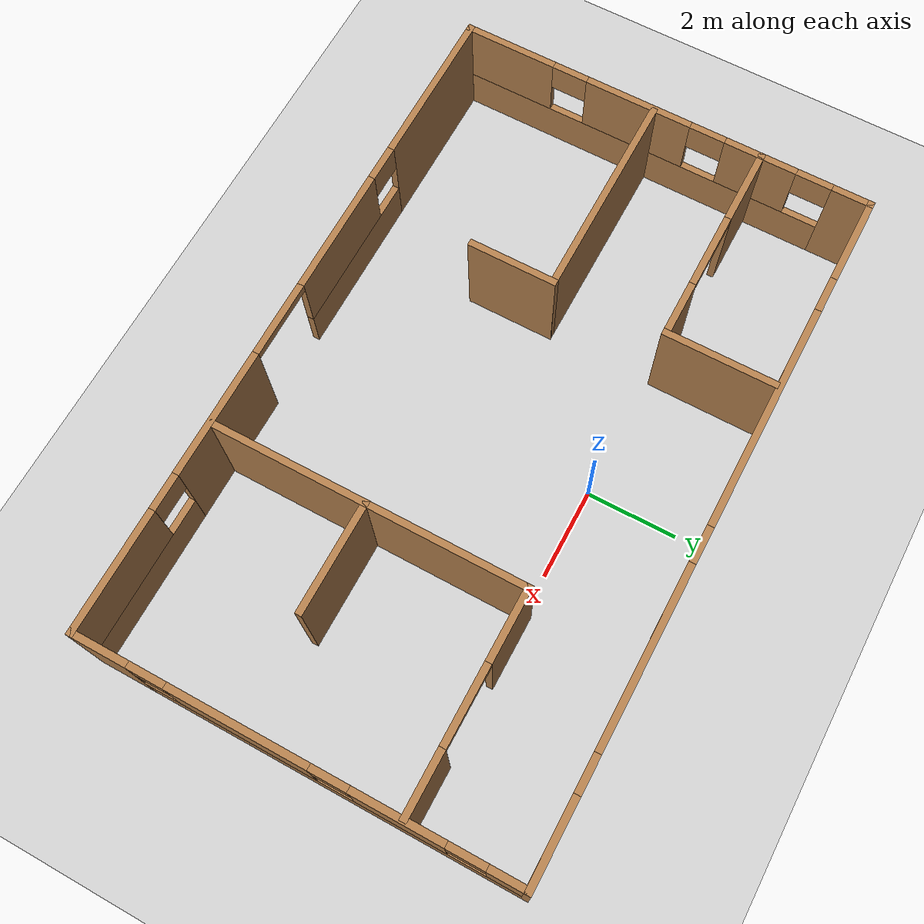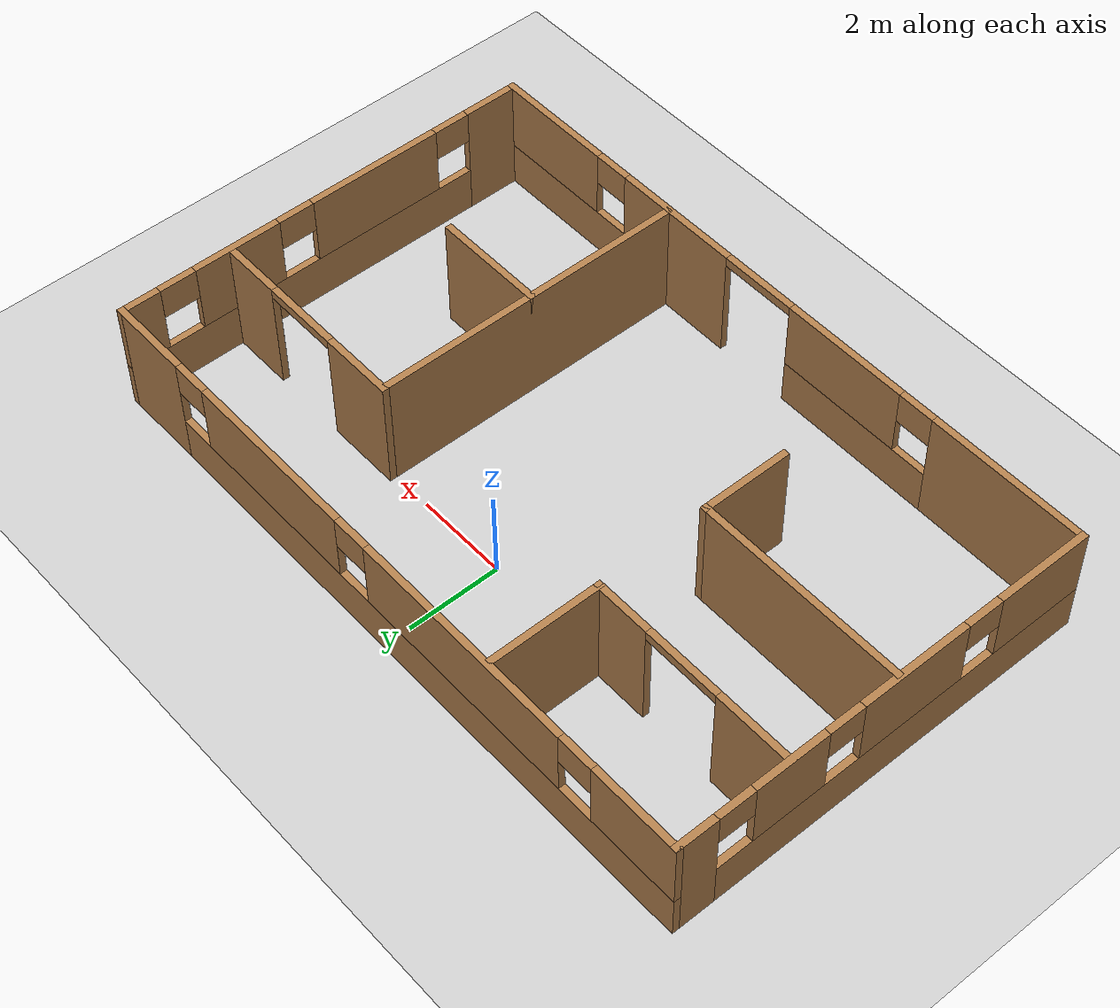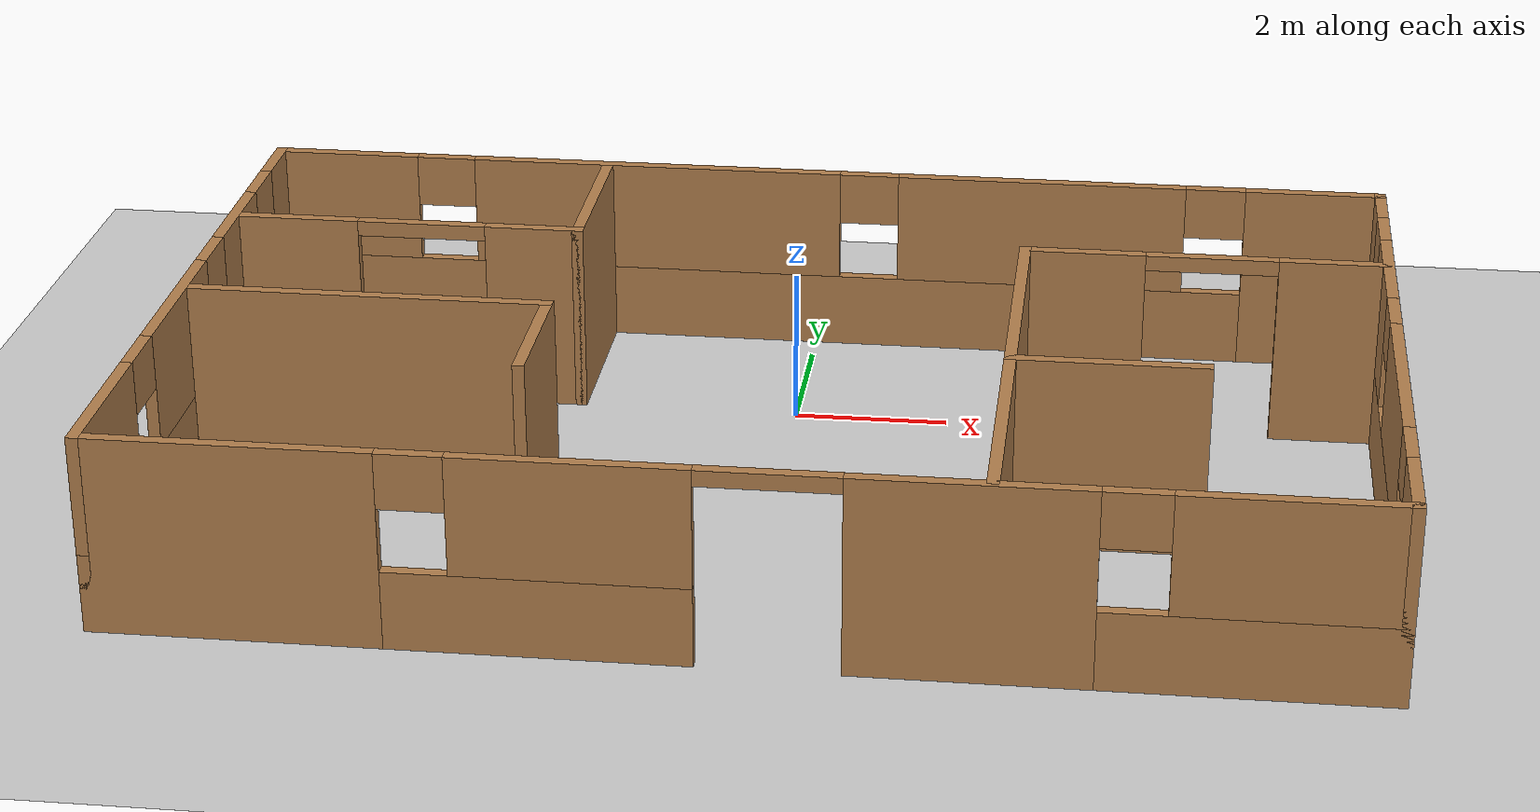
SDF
<sdf version="1.7">
 <world name="default">
  <light name="sun" type="directional">
   <pose>0 0 10 0 -0 0</pose>
   <diffuse>0.8 0.8 0.8 1</diffuse>
   <specular>0.2 0.2 0.2 1</specular>
   <attenuation>
    <range>1000</range>
    <constant>0.9</constant>
    <linear>0.01</linear>
    <quadratic>0.001</quadratic>
   </attenuation>
   <direction>-0.5 0.1 -0.9</direction>
   <spot><inner_angle>0</inner_angle><outer_angle>0</outer_angle><falloff>0</falloff></spot>
  </light>
  <model name="ground_plane">
   <static>1</static>
   <link name="link">
    <collision name="collision">
     <geometry><plane><normal>0 0 1</normal><size>100 100</size></plane></geometry>
     <surface>
      <contact><collide_bitmask>65535</collide_bitmask></contact>
      <friction><ode><mu>100</mu><mu2>50</mu2></ode></friction>
     </surface>
    </collision>
    <visual name="visual">
     <cast_shadows>0</cast_shadows>
     <geometry><plane><normal>0 0 1</normal><size>100 100</size></plane></geometry>
     <material>
      <script><uri>file://media/materials/scripts/gazebo.material</uri><name>Gazebo/Grey</name></script>
     </material>
    </visual>
   </link>
  </model>
  <gravity>0 0 -9.8</gravity>
  <magnetic_field>6e-06 2.3e-05 -4.2e-05</magnetic_field>
  <atmosphere type="adiabatic"/>
  <physics type="ode">
   <max_step_size>0.001</max_step_size>
   <real_time_factor>1</real_time_factor>
   <real_time_update_rate>1000</real_time_update_rate>
  </physics>
  <scene><ambient>0.4 0.4 0.4 1</ambient><background>0.7 0.7 0.7 1</background><shadows>1</shadows></scene>
  <spherical_coordinates>
   <surface_model>EARTH_WGS84</surface_model>
   <latitude_deg>0</latitude_deg>
   <longitude_deg>0</longitude_deg>
   <elevation>0</elevation>
   <heading_deg>0</heading_deg>
  </spherical_coordinates>
  <model name="housev2">
   <pose>0.047374 -2.12789 0 0 -0 0</pose>
   <link name="Wall_0">
    <pose>-7.55 -0.0175 0 0 -0 -1.5708</pose>
    <visual name="Wall_0_Visual_0">
     <pose>-4.29025 0 1.25 0 -0 0</pose>
     <geometry><box><size>0.9195 0.15 2.5</size></box></geometry>
     <material>
      <script><uri>file://media/materials/scripts/gazebo.material</uri><name>Gazebo/Wood</name></script>
      <ambient>1 1 1 1</ambient>
     </material>
     <meta><layer>0</layer></meta>
    </visual>
    <collision name="Wall_0_Collision_0">
     <geometry><box><size>0.9195 0.15 2.5</size></box></geometry>
     <pose>-4.29025 0 1.25 0 -0 0</pose>
    </collision>
    <visual name="Wall_0_Visual_1">
     <pose>0.45975 0 0.5 0 -0 0</pose>
     <geometry><box><size>8.5805 0.15 1</size></box></geometry>
     <material>
      <script><uri>file://media/materials/scripts/gazebo.material</uri><name>Gazebo/Wood</name></script>
      <ambient>1 1 1 1</ambient>
     </material>
     <meta><layer>0</layer></meta>
    </visual>
    <collision name="Wall_0_Collision_1">
     <geometry><box><size>8.5805 0.15 1</size></box></geometry>
     <pose>0.45975 0 0.5 0 -0 0</pose>
    </collision>
    <visual name="Wall_0_Visual_2">
     <pose>-2.21725 0 1.75 0 -0 0</pose>
     <geometry><box><size>1.6265 0.15 1.5</size></box></geometry>
     <material>
      <script><uri>file://media/materials/scripts/gazebo.material</uri><name>Gazebo/Wood</name></script>
      <ambient>1 1 1 1</ambient>
     </material>
     <meta><layer>0</layer></meta>
    </visual>
    <collision name="Wall_0_Collision_2">
     <geometry><box><size>1.6265 0.15 1.5</size></box></geometry>
     <pose>-2.21725 0 1.75 0 -0 0</pose>
    </collision>
    <visual name="Wall_0_Visual_3">
     <pose>0.61175 0 1.75 0 -0 0</pose>
     <geometry><box><size>2.4315 0.15 1.5</size></box></geometry>
     <material>
      <script><uri>file://media/materials/scripts/gazebo.material</uri><name>Gazebo/Wood</name></script>
      <ambient>1 1 1 1</ambient>
     </material>
     <meta><layer>0</layer></meta>
    </visual>
    <collision name="Wall_0_Collision_3">
     <geometry><box><size>2.4315 0.15 1.5</size></box></geometry>
     <pose>0.61175 0 1.75 0 -0 0</pose>
    </collision>
    <visual name="Wall_0_Visual_4">
     <pose>3.68875 0 1.75 0 -0 0</pose>
     <geometry><box><size>2.1225 0.15 1.5</size></box></geometry>
     <material>
      <script><uri>file://media/materials/scripts/gazebo.material</uri><name>Gazebo/Wood</name></script>
      <ambient>1 1 1 1</ambient>
     </material>
     <meta><layer>0</layer></meta>
    </visual>
    <collision name="Wall_0_Collision_4">
     <geometry><box><size>2.1225 0.15 1.5</size></box></geometry>
     <pose>3.68875 0 1.75 0 -0 0</pose>
    </collision>
    <visual name="Wall_0_Visual_5">
     <pose>-3.4305 0 2.15 0 -0 0</pose>
     <geometry><box><size>0.8 0.15 0.7</size></box></geometry>
     <material>
      <script><uri>file://media/materials/scripts/gazebo.material</uri><name>Gazebo/Wood</name></script>
      <ambient>1 1 1 1</ambient>
     </material>
     <meta><layer>0</layer></meta>
    </visual>
    <collision name="Wall_0_Collision_5">
     <geometry><box><size>0.8 0.15 0.7</size></box></geometry>
     <pose>-3.4305 0 2.15 0 -0 0</pose>
    </collision>
    <visual name="Wall_0_Visual_6">
     <pose>-1.004 0 2.15 0 -0 0</pose>
     <geometry><box><size>0.8 0.15 0.7</size></box></geometry>
     <material>
      <script><uri>file://media/materials/scripts/gazebo.material</uri><name>Gazebo/Wood</name></script>
      <ambient>1 1 1 1</ambient>
     </material>
     <meta><layer>0</layer></meta>
    </visual>
    <collision name="Wall_0_Collision_6">
     <geometry><box><size>0.8 0.15 0.7</size></box></geometry>
     <pose>-1.004 0 2.15 0 -0 0</pose>
    </collision>
    <visual name="Wall_0_Visual_7">
     <pose>2.2275 0 2.15 0 -0 0</pose>
     <geometry><box><size>0.8 0.15 0.7</size></box></geometry>
     <material>
      <script><uri>file://media/materials/scripts/gazebo.material</uri><name>Gazebo/Wood</name></script>
      <ambient>1 1 1 1</ambient>
     </material>
     <meta><layer>0</layer></meta>
    </visual>
    <collision name="Wall_0_Collision_7">
     <geometry><box><size>0.8 0.15 0.7</size></box></geometry>
     <pose>2.2275 0 2.15 0 -0 0</pose>
    </collision>
   </link>
   <link name="Wall_1">
    <pose>-0 -4.6925 0 0 -0 0</pose>
    <visual name="Wall_1_Visual_0">
     <pose>-5.8455 0 1.25 0 -0 0</pose>
     <geometry><box><size>3.559 0.15 2.5</size></box></geometry>
     <material>
      <script><uri>file://media/materials/scripts/gazebo.material</uri><name>Gazebo/Wood</name></script>
      <ambient>1 1 1 1</ambient>
     </material>
     <meta><layer>0</layer></meta>
    </visual>
    <collision name="Wall_1_Collision_0">
     <geometry><box><size>3.559 0.15 2.5</size></box></geometry>
     <pose>-5.8455 0 1.25 0 -0 0</pose>
    </collision>
    <visual name="Wall_1_Visual_1">
     <pose>2.68275 0 1.25 0 -0 0</pose>
     <geometry><box><size>2.8555 0.15 2.5</size></box></geometry>
     <material>
      <script><uri>file://media/materials/scripts/gazebo.material</uri><name>Gazebo/Wood</name></script>
      <ambient>1 1 1 1</ambient>
     </material>
     <meta><layer>0</layer></meta>
    </visual>
    <collision name="Wall_1_Collision_1">
     <geometry><box><size>2.8555 0.15 2.5</size></box></geometry>
     <pose>2.68275 0 1.25 0 -0 0</pose>
    </collision>
    <visual name="Wall_1_Visual_2">
     <pose>-2.2555 0 0.5 0 -0 0</pose>
     <geometry><box><size>3.621 0.15 1</size></box></geometry>
     <material>
      <script><uri>file://media/materials/scripts/gazebo.material</uri><name>Gazebo/Wood</name></script>
      <ambient>1 1 1 1</ambient>
     </material>
     <meta><layer>0</layer></meta>
    </visual>
    <collision name="Wall_1_Collision_2">
     <geometry><box><size>3.621 0.15 1</size></box></geometry>
     <pose>-2.2555 0 0.5 0 -0 0</pose>
    </collision>
    <visual name="Wall_1_Visual_3">
     <pose>5.86775 0 0.5 0 -0 0</pose>
     <geometry><box><size>3.5145 0.15 1</size></box></geometry>
     <material>
      <script><uri>file://media/materials/scripts/gazebo.material</uri><name>Gazebo/Wood</name></script>
      <ambient>1 1 1 1</ambient>
     </material>
     <meta><layer>0</layer></meta>
    </visual>
    <collision name="Wall_1_Collision_3">
     <geometry><box><size>3.5145 0.15 1</size></box></geometry>
     <pose>5.86775 0 0.5 0 -0 0</pose>
    </collision>
    <visual name="Wall_1_Visual_4">
     <pose>-1.8555 0 1.75 0 -0 0</pose>
     <geometry><box><size>2.821 0.15 1.5</size></box></geometry>
     <material>
      <script><uri>file://media/materials/scripts/gazebo.material</uri><name>Gazebo/Wood</name></script>
      <ambient>1 1 1 1</ambient>
     </material>
     <meta><layer>0</layer></meta>
    </visual>
    <collision name="Wall_1_Collision_4">
     <geometry><box><size>2.821 0.15 1.5</size></box></geometry>
     <pose>-1.8555 0 1.75 0 -0 0</pose>
    </collision>
    <visual name="Wall_1_Visual_5">
     <pose>-1.8555 0 1.75 0 -0 0</pose>
     <geometry><box><size>2.821 0.15 1.5</size></box></geometry>
     <material>
      <script><uri>file://media/materials/scripts/gazebo.material</uri><name>Gazebo/Wood</name></script>
      <ambient>1 1 1 1</ambient>
     </material>
     <meta><layer>0</layer></meta>
    </visual>
    <collision name="Wall_1_Collision_5">
     <geometry><box><size>2.821 0.15 1.5</size></box></geometry>
     <pose>-1.8555 0 1.75 0 -0 0</pose>
    </collision>
    <visual name="Wall_1_Visual_6">
     <pose>6.26775 0 1.75 0 -0 0</pose>
     <geometry><box><size>2.7145 0.15 1.5</size></box></geometry>
     <material>
      <script><uri>file://media/materials/scripts/gazebo.material</uri><name>Gazebo/Wood</name></script>
      <ambient>1 1 1 1</ambient>
     </material>
     <meta><layer>0</layer></meta>
    </visual>
    <collision name="Wall_1_Collision_6">
     <geometry><box><size>2.7145 0.15 1.5</size></box></geometry>
     <pose>6.26775 0 1.75 0 -0 0</pose>
    </collision>
    <visual name="Wall_1_Visual_7">
     <pose>-3.666 0 2.15 0 -0 0</pose>
     <geometry><box><size>0.8 0.15 0.7</size></box></geometry>
     <material>
      <script><uri>file://media/materials/scripts/gazebo.material</uri><name>Gazebo/Wood</name></script>
      <ambient>1 1 1 1</ambient>
     </material>
     <meta><layer>0</layer></meta>
    </visual>
    <collision name="Wall_1_Collision_7">
     <geometry><box><size>0.8 0.15 0.7</size></box></geometry>
     <pose>-3.666 0 2.15 0 -0 0</pose>
    </collision>
    <visual name="Wall_1_Visual_8">
     <pose>4.5105 0 2.15 0 -0 0</pose>
     <geometry><box><size>0.8 0.15 0.7</size></box></geometry>
     <material>
      <script><uri>file://media/materials/scripts/gazebo.material</uri><name>Gazebo/Wood</name></script>
      <ambient>1 1 1 1</ambient>
     </material>
     <meta><layer>0</layer></meta>
    </visual>
    <collision name="Wall_1_Collision_8">
     <geometry><box><size>0.8 0.15 0.7</size></box></geometry>
     <pose>4.5105 0 2.15 0 -0 0</pose>
    </collision>
    <visual name="Wall_1_Visual_9">
     <pose>0.405 0 2.4 0 -0 0</pose>
     <geometry><box><size>1.7 0.15 0.2</size></box></geometry>
     <material>
      <script><uri>file://media/materials/scripts/gazebo.material</uri><name>Gazebo/Wood</name></script>
      <ambient>1 1 1 1</ambient>
     </material>
     <meta><layer>0</layer></meta>
    </visual>
    <collision name="Wall_1_Collision_9">
     <geometry><box><size>1.7 0.15 0.2</size></box></geometry>
     <pose>0.405 0 2.4 0 -0 0</pose>
    </collision>
    <visual name="Wall_1_Visual_10">
     <pose>0.405 0 2.4 0 -0 0</pose>
     <geometry><box><size>1.7 0.15 0.2</size></box></geometry>
     <material>
      <script><uri>file://media/materials/scripts/gazebo.material</uri><name>Gazebo/Wood</name></script>
      <ambient>1 1 1 1</ambient>
     </material>
     <meta><layer>0</layer></meta>
    </visual>
    <collision name="Wall_1_Collision_10">
     <geometry><box><size>1.7 0.15 0.2</size></box></geometry>
     <pose>0.405 0 2.4 0 -0 0</pose>
    </collision>
   </link>
   <link name="Wall_10">
    <collision name="Wall_10_Collision">
     <geometry><box><size>2 0.15 2.5</size></box></geometry>
     <pose>0 0 1.25 0 -0 0</pose>
    </collision>
    <visual name="Wall_10_Visual">
     <pose>0 0 1.25 0 -0 0</pose>
     <geometry><box><size>2 0.15 2.5</size></box></geometry>
     <material>
      <script><uri>file://media/materials/scripts/gazebo.material</uri><name>Gazebo/Wood</name></script>
      <ambient>1 1 1 1</ambient>
     </material>
     <meta><layer>0</layer></meta>
    </visual>
    <pose>-2.8955 -1.192 0 0 -0 -1.5708</pose>
   </link>
   <link name="Wall_13">
    <pose>-5.2415 2.2055 0 0 -0 0</pose>
    <visual name="Wall_13_Visual_0">
     <pose>-1.50325 0 1.25 0 -0 0</pose>
     <geometry><box><size>1.7435 0.15 2.5</size></box></geometry>
     <material>
      <script><uri>file://media/materials/scripts/gazebo.material</uri><name>Gazebo/Wood</name></script>
      <ambient>1 1 1 1</ambient>
     </material>
     <meta><layer>0</layer></meta>
    </visual>
    <collision name="Wall_13_Collision_0">
     <geometry><box><size>1.7435 0.15 2.5</size></box></geometry>
     <pose>-1.50325 0 1.25 0 -0 0</pose>
    </collision>
    <visual name="Wall_13_Visual_1">
     <pose>1.72175 0 1.25 0 -0 0</pose>
     <geometry><box><size>1.3065 0.15 2.5</size></box></geometry>
     <material>
      <script><uri>file://media/materials/scripts/gazebo.material</uri><name>Gazebo/Wood</name></script>
      <ambient>1 1 1 1</ambient>
     </material>
     <meta><layer>0</layer></meta>
    </visual>
    <collision name="Wall_13_Collision_1">
     <geometry><box><size>1.3065 0.15 2.5</size></box></geometry>
     <pose>1.72175 0 1.25 0 -0 0</pose>
    </collision>
    <visual name="Wall_13_Visual_2">
     <pose>0.2185 0 2.4 0 -0 0</pose>
     <geometry><box><size>1.7 0.15 0.2</size></box></geometry>
     <material>
      <script><uri>file://media/materials/scripts/gazebo.material</uri><name>Gazebo/Wood</name></script>
      <ambient>1 1 1 1</ambient>
     </material>
     <meta><layer>0</layer></meta>
    </visual>
    <collision name="Wall_13_Collision_2">
     <geometry><box><size>1.7 0.15 0.2</size></box></geometry>
     <pose>0.2185 0 2.4 0 -0 0</pose>
    </collision>
   </link>
   <link name="Wall_14">
    <collision name="Wall_14_Collision">
     <geometry><box><size>2.5 0.15 2.5</size></box></geometry>
     <pose>0 0 1.25 0 -0 0</pose>
    </collision>
    <visual name="Wall_14_Visual">
     <pose>0 0 1.25 0 -0 0</pose>
     <geometry><box><size>2.5 0.15 2.5</size></box></geometry>
     <material>
      <script><uri>file://media/materials/scripts/gazebo.material</uri><name>Gazebo/Wood</name></script>
      <ambient>1 1 1 1</ambient>
     </material>
     <meta><layer>0</layer></meta>
    </visual>
    <pose>-2.9415 3.3805 0 0 -0 1.5708</pose>
   </link>
   <link name="Wall_2">
    <pose>7.55 -0.0175 0 0 -0 1.5708</pose>
    <visual name="Wall_2_Visual_0">
     <pose>-4.10275 0 1.25 0 -0 0</pose>
     <geometry><box><size>1.2945 0.15 2.5</size></box></geometry>
     <material>
      <script><uri>file://media/materials/scripts/gazebo.material</uri><name>Gazebo/Wood</name></script>
      <ambient>1 1 1 1</ambient>
     </material>
     <meta><layer>0</layer></meta>
    </visual>
    <collision name="Wall_2_Collision_0">
     <geometry><box><size>1.2945 0.15 2.5</size></box></geometry>
     <pose>-4.10275 0 1.25 0 -0 0</pose>
    </collision>
    <visual name="Wall_2_Visual_1">
     <pose>0.64725 0 0.5 0 -0 0</pose>
     <geometry><box><size>8.2055 0.15 1</size></box></geometry>
     <material>
      <script><uri>file://media/materials/scripts/gazebo.material</uri><name>Gazebo/Wood</name></script>
      <ambient>1 1 1 1</ambient>
     </material>
     <meta><layer>0</layer></meta>
    </visual>
    <collision name="Wall_2_Collision_1">
     <geometry><box><size>8.2055 0.15 1</size></box></geometry>
     <pose>0.64725 0 0.5 0 -0 0</pose>
    </collision>
    <visual name="Wall_2_Visual_2">
     <pose>-1.158 0 1.75 0 -0 0</pose>
     <geometry><box><size>2.995 0.15 1.5</size></box></geometry>
     <material>
      <script><uri>file://media/materials/scripts/gazebo.material</uri><name>Gazebo/Wood</name></script>
      <ambient>1 1 1 1</ambient>
     </material>
     <meta><layer>0</layer></meta>
    </visual>
    <collision name="Wall_2_Collision_2">
     <geometry><box><size>2.995 0.15 1.5</size></box></geometry>
     <pose>-1.158 0 1.75 0 -0 0</pose>
    </collision>
    <visual name="Wall_2_Visual_3">
     <pose>2.108 0 1.75 0 -0 0</pose>
     <geometry><box><size>1.937 0.15 1.5</size></box></geometry>
     <material>
      <script><uri>file://media/materials/scripts/gazebo.material</uri><name>Gazebo/Wood</name></script>
      <ambient>1 1 1 1</ambient>
     </material>
     <meta><layer>0</layer></meta>
    </visual>
    <collision name="Wall_2_Collision_3">
     <geometry><box><size>1.937 0.15 1.5</size></box></geometry>
     <pose>2.108 0 1.75 0 -0 0</pose>
    </collision>
    <visual name="Wall_2_Visual_4">
     <pose>4.31325 0 1.75 0 -0 0</pose>
     <geometry><box><size>0.8735 0.15 1.5</size></box></geometry>
     <material>
      <script><uri>file://media/materials/scripts/gazebo.material</uri><name>Gazebo/Wood</name></script>
      <ambient>1 1 1 1</ambient>
     </material>
     <meta><layer>0</layer></meta>
    </visual>
    <collision name="Wall_2_Collision_4">
     <geometry><box><size>0.8735 0.15 1.5</size></box></geometry>
     <pose>4.31325 0 1.75 0 -0 0</pose>
    </collision>
    <visual name="Wall_2_Visual_5">
     <pose>-3.0555 0 2.15 0 -0 0</pose>
     <geometry><box><size>0.8 0.15 0.7</size></box></geometry>
     <material>
      <script><uri>file://media/materials/scripts/gazebo.material</uri><name>Gazebo/Wood</name></script>
      <ambient>1 1 1 1</ambient>
     </material>
     <meta><layer>0</layer></meta>
    </visual>
    <collision name="Wall_2_Collision_5">
     <geometry><box><size>0.8 0.15 0.7</size></box></geometry>
     <pose>-3.0555 0 2.15 0 -0 0</pose>
    </collision>
    <visual name="Wall_2_Visual_6">
     <pose>0.7395 0 2.15 0 -0 0</pose>
     <geometry><box><size>0.8 0.15 0.7</size></box></geometry>
     <material>
      <script><uri>file://media/materials/scripts/gazebo.material</uri><name>Gazebo/Wood</name></script>
      <ambient>1 1 1 1</ambient>
     </material>
     <meta><layer>0</layer></meta>
    </visual>
    <collision name="Wall_2_Collision_6">
     <geometry><box><size>0.8 0.15 0.7</size></box></geometry>
     <pose>0.7395 0 2.15 0 -0 0</pose>
    </collision>
    <visual name="Wall_2_Visual_7">
     <pose>3.4765 0 2.15 0 -0 0</pose>
     <geometry><box><size>0.8 0.15 0.7</size></box></geometry>
     <material>
      <script><uri>file://media/materials/scripts/gazebo.material</uri><name>Gazebo/Wood</name></script>
      <ambient>1 1 1 1</ambient>
     </material>
     <meta><layer>0</layer></meta>
    </visual>
    <collision name="Wall_2_Collision_7">
     <geometry><box><size>0.8 0.15 0.7</size></box></geometry>
     <pose>3.4765 0 2.15 0 -0 0</pose>
    </collision>
   </link>
   <link name="Wall_26">
    <pose>5.212 2.217 0 0 -0 3.14159</pose>
    <visual name="Wall_26_Visual_0">
     <pose>-1.66425 0 1.25 0 -0 0</pose>
     <geometry><box><size>1.4215 0.15 2.5</size></box></geometry>
     <material>
      <script><uri>file://media/materials/scripts/gazebo.material</uri><name>Gazebo/Wood</name></script>
      <ambient>1 1 1 1</ambient>
     </material>
     <meta><layer>0</layer></meta>
    </visual>
    <collision name="Wall_26_Collision_0">
     <geometry><box><size>1.4215 0.15 2.5</size></box></geometry>
     <pose>-1.66425 0 1.25 0 -0 0</pose>
    </collision>
    <visual name="Wall_26_Visual_1">
     <pose>1.56075 0 1.25 0 -0 0</pose>
     <geometry><box><size>1.6285 0.15 2.5</size></box></geometry>
     <material>
      <script><uri>file://media/materials/scripts/gazebo.material</uri><name>Gazebo/Wood</name></script>
      <ambient>1 1 1 1</ambient>
     </material>
     <meta><layer>0</layer></meta>
    </visual>
    <collision name="Wall_26_Collision_1">
     <geometry><box><size>1.6285 0.15 2.5</size></box></geometry>
     <pose>1.56075 0 1.25 0 -0 0</pose>
    </collision>
    <visual name="Wall_26_Visual_2">
     <pose>-0.1035 0 2.4 0 -0 0</pose>
     <geometry><box><size>1.7 0.15 0.2</size></box></geometry>
     <material>
      <script><uri>file://media/materials/scripts/gazebo.material</uri><name>Gazebo/Wood</name></script>
      <ambient>1 1 1 1</ambient>
     </material>
     <meta><layer>0</layer></meta>
    </visual>
    <collision name="Wall_26_Collision_2">
     <geometry><box><size>1.7 0.15 0.2</size></box></geometry>
     <pose>-0.1035 0 2.4 0 -0 0</pose>
    </collision>
   </link>
   <link name="Wall_27">
    <collision name="Wall_27_Collision">
     <geometry><box><size>7 0.15 2.5</size></box></geometry>
     <pose>0 0 1.25 0 -0 0</pose>
    </collision>
    <visual name="Wall_27_Visual">
     <pose>0 0 1.25 0 -0 0</pose>
     <geometry><box><size>7 0.15 2.5</size></box></geometry>
     <material>
      <script><uri>file://media/materials/scripts/gazebo.material</uri><name>Gazebo/Wood</name></script>
      <ambient>1 1 1 1</ambient>
     </material>
     <meta><layer>0</layer></meta>
    </visual>
    <pose>2.912 -1.208 0 0 -0 -1.5708</pose>
   </link>
   <link name="Wall_29">
    <collision name="Wall_29_Collision">
     <geometry><box><size>2.5 0.15 2.5</size></box></geometry>
     <pose>0 0 1.25 0 -0 0</pose>
    </collision>
    <visual name="Wall_29_Visual">
     <pose>0 0 1.25 0 -0 0</pose>
     <geometry><box><size>2.5 0.15 2.5</size></box></geometry>
     <material>
      <script><uri>file://media/materials/scripts/gazebo.material</uri><name>Gazebo/Wood</name></script>
      <ambient>1 1 1 1</ambient>
     </material>
     <meta><layer>0</layer></meta>
    </visual>
    <pose>4.087 -1.2445 0 0 -0 0</pose>
   </link>
   <link name="Wall_3">
    <pose>-0 4.6575 0 0 -0 3.14159</pose>
    <visual name="Wall_3_Visual_0">
     <pose>-6.69325 0 1.25 0 -0 0</pose>
     <geometry><box><size>1.8635 0.15 2.5</size></box></geometry>
     <material>
      <script><uri>file://media/materials/scripts/gazebo.material</uri><name>Gazebo/Wood</name></script>
      <ambient>1 1 1 1</ambient>
     </material>
     <meta><layer>0</layer></meta>
    </visual>
    <collision name="Wall_3_Collision_0">
     <geometry><box><size>1.8635 0.15 2.5</size></box></geometry>
     <pose>-6.69325 0 1.25 0 -0 0</pose>
    </collision>
    <visual name="Wall_3_Visual_1">
     <pose>0.93175 0 0.5 0 -0 0</pose>
     <geometry><box><size>13.3865 0.15 1</size></box></geometry>
     <material>
      <script><uri>file://media/materials/scripts/gazebo.material</uri><name>Gazebo/Wood</name></script>
      <ambient>1 1 1 1</ambient>
     </material>
     <meta><layer>0</layer></meta>
    </visual>
    <collision name="Wall_3_Collision_1">
     <geometry><box><size>13.3865 0.15 1</size></box></geometry>
     <pose>0.93175 0 0.5 0 -0 0</pose>
    </collision>
    <visual name="Wall_3_Visual_2">
     <pose>-3.0155 0 1.75 0 -0 0</pose>
     <geometry><box><size>3.892 0.15 1.5</size></box></geometry>
     <material>
      <script><uri>file://media/materials/scripts/gazebo.material</uri><name>Gazebo/Wood</name></script>
      <ambient>1 1 1 1</ambient>
     </material>
     <meta><layer>0</layer></meta>
    </visual>
    <collision name="Wall_3_Collision_2">
     <geometry><box><size>3.892 0.15 1.5</size></box></geometry>
     <pose>-3.0155 0 1.75 0 -0 0</pose>
    </collision>
    <visual name="Wall_3_Visual_3">
     <pose>2.26875 0 1.75 0 -0 0</pose>
     <geometry><box><size>5.0765 0.15 1.5</size></box></geometry>
     <material>
      <script><uri>file://media/materials/scripts/gazebo.material</uri><name>Gazebo/Wood</name></script>
      <ambient>1 1 1 1</ambient>
     </material>
     <meta><layer>0</layer></meta>
    </visual>
    <collision name="Wall_3_Collision_3">
     <geometry><box><size>5.0765 0.15 1.5</size></box></geometry>
     <pose>2.26875 0 1.75 0 -0 0</pose>
    </collision>
    <visual name="Wall_3_Visual_4">
     <pose>6.616 0 1.75 0 -0 0</pose>
     <geometry><box><size>2.018 0.15 1.5</size></box></geometry>
     <material>
      <script><uri>file://media/materials/scripts/gazebo.material</uri><name>Gazebo/Wood</name></script>
      <ambient>1 1 1 1</ambient>
     </material>
     <meta><layer>0</layer></meta>
    </visual>
    <collision name="Wall_3_Collision_4">
     <geometry><box><size>2.018 0.15 1.5</size></box></geometry>
     <pose>6.616 0 1.75 0 -0 0</pose>
    </collision>
    <visual name="Wall_3_Visual_5">
     <pose>-5.3615 0 2.15 0 -0 0</pose>
     <geometry><box><size>0.8 0.15 0.7</size></box></geometry>
     <material>
      <script><uri>file://media/materials/scripts/gazebo.material</uri><name>Gazebo/Wood</name></script>
      <ambient>1 1 1 1</ambient>
     </material>
     <meta><layer>0</layer></meta>
    </visual>
    <collision name="Wall_3_Collision_5">
     <geometry><box><size>0.8 0.15 0.7</size></box></geometry>
     <pose>-5.3615 0 2.15 0 -0 0</pose>
    </collision>
    <visual name="Wall_3_Visual_6">
     <pose>-0.6695 0 2.15 0 -0 0</pose>
     <geometry><box><size>0.8 0.15 0.7</size></box></geometry>
     <material>
      <script><uri>file://media/materials/scripts/gazebo.material</uri><name>Gazebo/Wood</name></script>
      <ambient>1 1 1 1</ambient>
     </material>
     <meta><layer>0</layer></meta>
    </visual>
    <collision name="Wall_3_Collision_6">
     <geometry><box><size>0.8 0.15 0.7</size></box></geometry>
     <pose>-0.6695 0 2.15 0 -0 0</pose>
    </collision>
    <visual name="Wall_3_Visual_7">
     <pose>5.207 0 2.15 0 -0 0</pose>
     <geometry><box><size>0.8 0.15 0.7</size></box></geometry>
     <material>
      <script><uri>file://media/materials/scripts/gazebo.material</uri><name>Gazebo/Wood</name></script>
      <ambient>1 1 1 1</ambient>
     </material>
     <meta><layer>0</layer></meta>
    </visual>
    <collision name="Wall_3_Collision_7">
     <geometry><box><size>0.8 0.15 0.7</size></box></geometry>
     <pose>5.207 0 2.15 0 -0 0</pose>
    </collision>
   </link>
   <link name="Wall_9">
    <collision name="Wall_9_Collision">
     <geometry><box><size>4.75 0.15 2.5</size></box></geometry>
     <pose>0 0 1.25 0 -0 0</pose>
    </collision>
    <visual name="Wall_9_Visual">
     <pose>0 0 1.25 0 -0 0</pose>
     <geometry><box><size>4.75 0.15 2.5</size></box></geometry>
     <material>
      <script><uri>file://media/materials/scripts/gazebo.material</uri><name>Gazebo/Wood</name></script>
      <ambient>1 1 1 1</ambient>
     </material>
     <meta><layer>0</layer></meta>
    </visual>
    <pose>-5.1955 -0.267 0 0 -0 0</pose>
   </link>
   <static>1</static>
  </model>
 </world>
</sdf>
